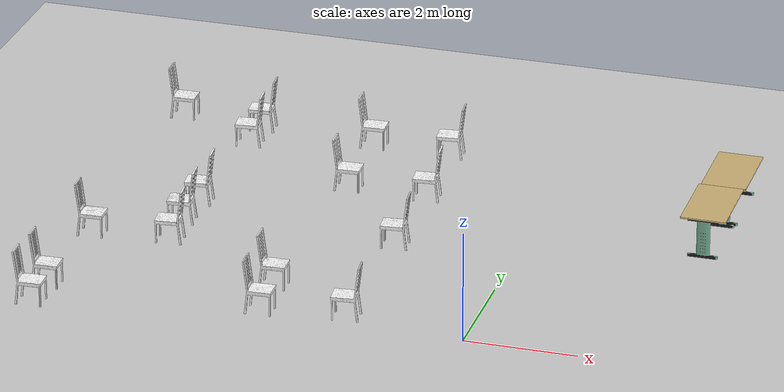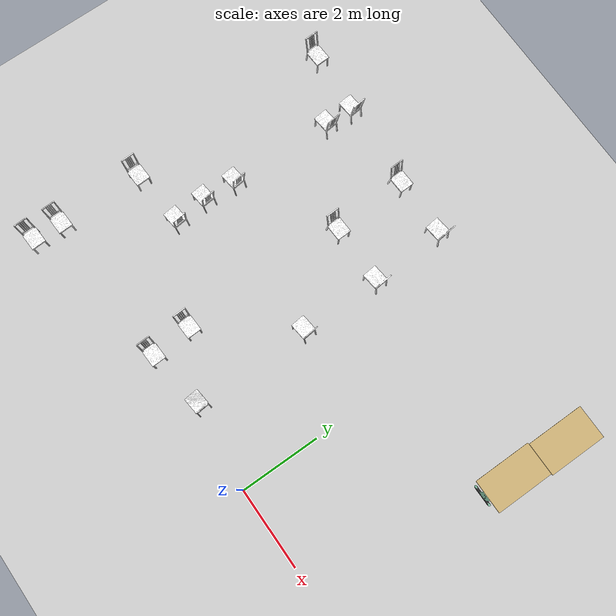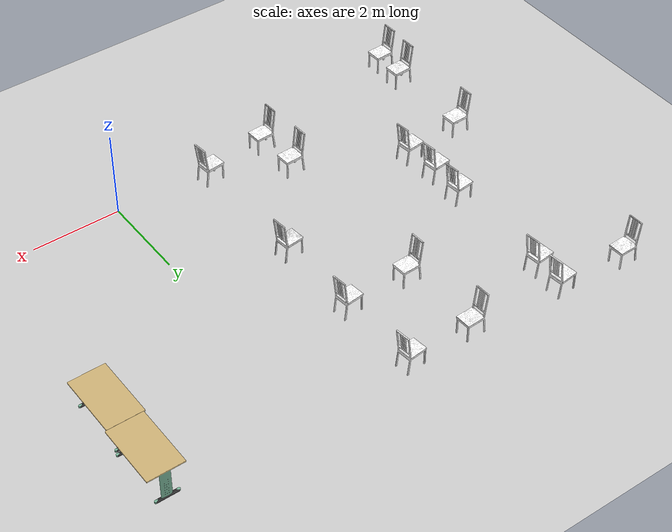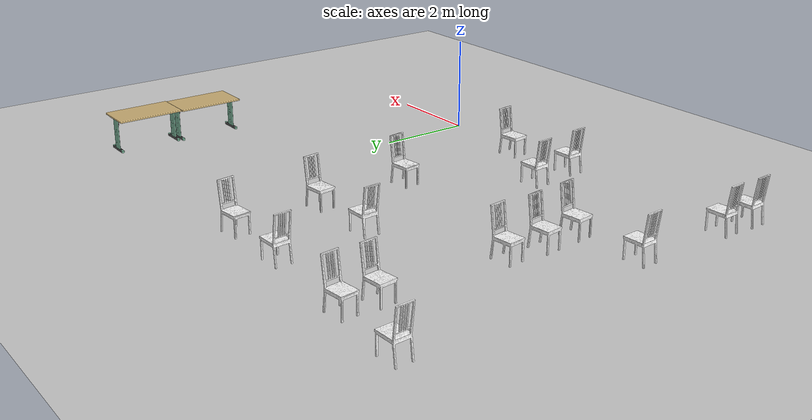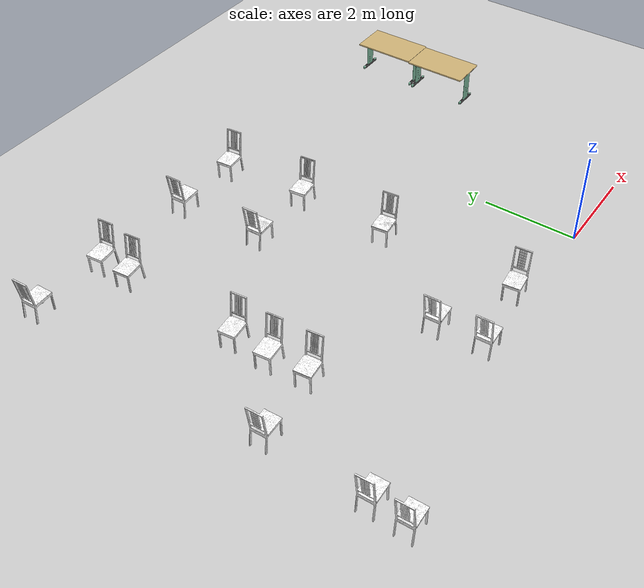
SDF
<sdf version="1.6">
 <world name="default">
  <model name="ground_plane">
   <static>1</static>
   <link name="link">
    <collision name="collision">
     <geometry><plane><normal>0 0 1</normal><size>100 100</size></plane></geometry>
     <surface>
      <contact><collide_bitmask>65535</collide_bitmask></contact>
      <friction><ode><mu>100</mu><mu2>50</mu2></ode></friction>
     </surface>
    </collision>
    <visual name="visual">
     <cast_shadows>0</cast_shadows>
     <geometry><plane><normal>0 0 1</normal><size>100 100</size></plane></geometry>
     <material>
      <script><uri>file://media/materials/scripts/gazebo.material</uri><name>Gazebo/Grey</name></script>
     </material>
    </visual>
   </link>
  </model>
  <model name="chair_ikea_borje">
   <link name="base_link">
    <inertial>
     <mass>1</mass>
     <inertia><ixx>1</ixx><ixy>0</ixy><ixz>0</ixz><iyy>1</iyy><iyz>0</iyz><izz>1</izz></inertia>
    </inertial>
    <visual name="base_link_visual">
     <geometry><mesh><scale>1 1 1</scale><uri>model://chair_ikea_borje/meshes/model.dae</uri></mesh></geometry>
    </visual>
    <collision name="base_link_collision">
     <geometry><mesh><uri>model://chair_ikea_borje/meshes/model.dae</uri></mesh></geometry>
     <surface>
      <friction>
       <ode><mu>1</mu><mu2>1</mu2><fdir1>0 0 0</fdir1><slip1>0</slip1><slip2>0</slip2></ode>
       <torsional>
        <coefficient>1</coefficient>
        <patch_radius>0</patch_radius>
        <surface_radius>0</surface_radius>
        <use_patch_radius>1</use_patch_radius>
        <ode><slip>0</slip></ode>
       </torsional>
      </friction>
      <bounce><restitution_coefficient>0</restitution_coefficient><threshold>1e+06</threshold></bounce>
      <contact>
       <collide_without_contact>0</collide_without_contact>
       <collide_without_contact_bitmask>1</collide_without_contact_bitmask>
       <collide_bitmask>1</collide_bitmask>
       <ode>
        <soft_cfm>0</soft_cfm>
        <soft_erp>0.2</soft_erp>
        <kp>1e+13</kp>
        <kd>1</kd>
        <max_vel>0.01</max_vel>
        <min_depth>0</min_depth>
       </ode>
       <bullet>
        <split_impulse>1</split_impulse>
        <split_impulse_penetration_threshold>-0.01</split_impulse_penetration_threshold>
        <soft_cfm>0</soft_cfm>
        <soft_erp>0.2</soft_erp>
        <kp>1e+13</kp>
        <kd>1</kd>
       </bullet>
      </contact>
     </surface>
    </collision>
   </link>
   <static>1</static>
   <pose>-2.20577 7.04316 0 0 0 -1.46428</pose>
  </model>
  <model name="chair_ikea_borje_0">
   <link name="base_link">
    <inertial>
     <mass>1</mass>
     <inertia><ixx>1</ixx><ixy>0</ixy><ixz>0</ixz><iyy>1</iyy><iyz>0</iyz><izz>1</izz></inertia>
    </inertial>
    <visual name="base_link_visual">
     <geometry><mesh><scale>1 1 1</scale><uri>model://chair_ikea_borje/meshes/model.dae</uri></mesh></geometry>
    </visual>
    <collision name="base_link_collision">
     <geometry><mesh><uri>model://chair_ikea_borje/meshes/model.dae</uri></mesh></geometry>
     <surface>
      <friction>
       <ode><mu>1</mu><mu2>1</mu2><fdir1>0 0 0</fdir1><slip1>0</slip1><slip2>0</slip2></ode>
       <torsional>
        <coefficient>1</coefficient>
        <patch_radius>0</patch_radius>
        <surface_radius>0</surface_radius>
        <use_patch_radius>1</use_patch_radius>
        <ode><slip>0</slip></ode>
       </torsional>
      </friction>
      <bounce><restitution_coefficient>0</restitution_coefficient><threshold>1e+06</threshold></bounce>
      <contact>
       <collide_without_contact>0</collide_without_contact>
       <collide_without_contact_bitmask>1</collide_without_contact_bitmask>
       <collide_bitmask>1</collide_bitmask>
       <ode>
        <soft_cfm>0</soft_cfm>
        <soft_erp>0.2</soft_erp>
        <kp>1e+13</kp>
        <kd>1</kd>
        <max_vel>0.01</max_vel>
        <min_depth>0</min_depth>
       </ode>
       <bullet>
        <split_impulse>1</split_impulse>
        <split_impulse_penetration_threshold>-0.01</split_impulse_penetration_threshold>
        <soft_cfm>0</soft_cfm>
        <soft_erp>0.2</soft_erp>
        <kp>1e+13</kp>
        <kd>1</kd>
       </bullet>
      </contact>
     </surface>
    </collision>
   </link>
   <static>1</static>
   <pose>-3.76611 7.04133 0 0 -0 1.61155</pose>
  </model>
  <model name="chair_ikea_borje_clone">
   <link name="base_link">
    <inertial>
     <mass>1</mass>
     <inertia><ixx>1</ixx><ixy>0</ixy><ixz>0</ixz><iyy>1</iyy><iyz>0</iyz><izz>1</izz></inertia>
    </inertial>
    <visual name="base_link_visual">
     <geometry><mesh><scale>1 1 1</scale><uri>model://chair_ikea_borje/meshes/model.dae</uri></mesh></geometry>
    </visual>
    <collision name="base_link_collision">
     <geometry><mesh><uri>model://chair_ikea_borje/meshes/model.dae</uri></mesh></geometry>
     <surface>
      <friction>
       <ode><mu>1</mu><mu2>1</mu2><fdir1>0 0 0</fdir1><slip1>0</slip1><slip2>0</slip2></ode>
       <torsional>
        <coefficient>1</coefficient>
        <patch_radius>0</patch_radius>
        <surface_radius>0</surface_radius>
        <use_patch_radius>1</use_patch_radius>
        <ode><slip>0</slip></ode>
       </torsional>
      </friction>
      <bounce><restitution_coefficient>0</restitution_coefficient><threshold>1e+06</threshold></bounce>
      <contact>
       <collide_without_contact>0</collide_without_contact>
       <collide_without_contact_bitmask>1</collide_without_contact_bitmask>
       <collide_bitmask>1</collide_bitmask>
       <ode>
        <soft_cfm>0</soft_cfm>
        <soft_erp>0.2</soft_erp>
        <kp>1e+13</kp>
        <kd>1</kd>
        <max_vel>0.01</max_vel>
        <min_depth>0</min_depth>
       </ode>
       <bullet>
        <split_impulse>1</split_impulse>
        <split_impulse_penetration_threshold>-0.01</split_impulse_penetration_threshold>
        <soft_cfm>0</soft_cfm>
        <soft_erp>0.2</soft_erp>
        <kp>1e+13</kp>
        <kd>1</kd>
       </bullet>
      </contact>
     </surface>
    </collision>
   </link>
   <static>1</static>
   <pose>-2.10978 5.18257 0 0 0 -1.46428</pose>
  </model>
  <model name="chair_ikea_borje_clone_0">
   <link name="base_link">
    <inertial>
     <mass>1</mass>
     <inertia><ixx>1</ixx><ixy>0</ixy><ixz>0</ixz><iyy>1</iyy><iyz>0</iyz><izz>1</izz></inertia>
    </inertial>
    <visual name="base_link_visual">
     <geometry><mesh><scale>1 1 1</scale><uri>model://chair_ikea_borje/meshes/model.dae</uri></mesh></geometry>
    </visual>
    <collision name="base_link_collision">
     <geometry><mesh><uri>model://chair_ikea_borje/meshes/model.dae</uri></mesh></geometry>
     <surface>
      <friction>
       <ode><mu>1</mu><mu2>1</mu2><fdir1>0 0 0</fdir1><slip1>0</slip1><slip2>0</slip2></ode>
       <torsional>
        <coefficient>1</coefficient>
        <patch_radius>0</patch_radius>
        <surface_radius>0</surface_radius>
        <use_patch_radius>1</use_patch_radius>
        <ode><slip>0</slip></ode>
       </torsional>
      </friction>
      <bounce><restitution_coefficient>0</restitution_coefficient><threshold>1e+06</threshold></bounce>
      <contact>
       <collide_without_contact>0</collide_without_contact>
       <collide_without_contact_bitmask>1</collide_without_contact_bitmask>
       <collide_bitmask>1</collide_bitmask>
       <ode>
        <soft_cfm>0</soft_cfm>
        <soft_erp>0.2</soft_erp>
        <kp>1e+13</kp>
        <kd>1</kd>
        <max_vel>0.01</max_vel>
        <min_depth>0</min_depth>
       </ode>
       <bullet>
        <split_impulse>1</split_impulse>
        <split_impulse_penetration_threshold>-0.01</split_impulse_penetration_threshold>
        <soft_cfm>0</soft_cfm>
        <soft_erp>0.2</soft_erp>
        <kp>1e+13</kp>
        <kd>1</kd>
       </bullet>
      </contact>
     </surface>
    </collision>
   </link>
   <static>1</static>
   <pose>-2.0955 0.278867 0 0 0 -1.46428</pose>
  </model>
  <model name="chair_ikea_borje_clone_1">
   <link name="base_link">
    <inertial>
     <mass>1</mass>
     <inertia><ixx>1</ixx><ixy>0</ixy><ixz>0</ixz><iyy>1</iyy><iyz>0</iyz><izz>1</izz></inertia>
    </inertial>
    <visual name="base_link_visual">
     <geometry><mesh><scale>1 1 1</scale><uri>model://chair_ikea_borje/meshes/model.dae</uri></mesh></geometry>
    </visual>
    <collision name="base_link_collision">
     <geometry><mesh><uri>model://chair_ikea_borje/meshes/model.dae</uri></mesh></geometry>
     <surface>
      <friction>
       <ode><mu>1</mu><mu2>1</mu2><fdir1>0 0 0</fdir1><slip1>0</slip1><slip2>0</slip2></ode>
       <torsional>
        <coefficient>1</coefficient>
        <patch_radius>0</patch_radius>
        <surface_radius>0</surface_radius>
        <use_patch_radius>1</use_patch_radius>
        <ode><slip>0</slip></ode>
       </torsional>
      </friction>
      <bounce><restitution_coefficient>0</restitution_coefficient><threshold>1e+06</threshold></bounce>
      <contact>
       <collide_without_contact>0</collide_without_contact>
       <collide_without_contact_bitmask>1</collide_without_contact_bitmask>
       <collide_bitmask>1</collide_bitmask>
       <ode>
        <soft_cfm>0</soft_cfm>
        <soft_erp>0.2</soft_erp>
        <kp>1e+13</kp>
        <kd>1</kd>
        <max_vel>0.01</max_vel>
        <min_depth>0</min_depth>
       </ode>
       <bullet>
        <split_impulse>1</split_impulse>
        <split_impulse_penetration_threshold>-0.01</split_impulse_penetration_threshold>
        <soft_cfm>0</soft_cfm>
        <soft_erp>0.2</soft_erp>
        <kp>1e+13</kp>
        <kd>1</kd>
       </bullet>
      </contact>
     </surface>
    </collision>
   </link>
   <static>1</static>
   <pose>-5.97586 3.87787 0 0 0 -1.46428</pose>
  </model>
  <model name="chair_ikea_borje_clone_2">
   <link name="base_link">
    <inertial>
     <mass>1</mass>
     <inertia><ixx>1</ixx><ixy>0</ixy><ixz>0</ixz><iyy>1</iyy><iyz>0</iyz><izz>1</izz></inertia>
    </inertial>
    <visual name="base_link_visual">
     <geometry><mesh><scale>1 1 1</scale><uri>model://chair_ikea_borje/meshes/model.dae</uri></mesh></geometry>
    </visual>
    <collision name="base_link_collision">
     <geometry><mesh><uri>model://chair_ikea_borje/meshes/model.dae</uri></mesh></geometry>
     <surface>
      <friction>
       <ode><mu>1</mu><mu2>1</mu2><fdir1>0 0 0</fdir1><slip1>0</slip1><slip2>0</slip2></ode>
       <torsional>
        <coefficient>1</coefficient>
        <patch_radius>0</patch_radius>
        <surface_radius>0</surface_radius>
        <use_patch_radius>1</use_patch_radius>
        <ode><slip>0</slip></ode>
       </torsional>
      </friction>
      <bounce><restitution_coefficient>0</restitution_coefficient><threshold>1e+06</threshold></bounce>
      <contact>
       <collide_without_contact>0</collide_without_contact>
       <collide_without_contact_bitmask>1</collide_without_contact_bitmask>
       <collide_bitmask>1</collide_bitmask>
       <ode>
        <soft_cfm>0</soft_cfm>
        <soft_erp>0.2</soft_erp>
        <kp>1e+13</kp>
        <kd>1</kd>
        <max_vel>0.01</max_vel>
        <min_depth>0</min_depth>
       </ode>
       <bullet>
        <split_impulse>1</split_impulse>
        <split_impulse_penetration_threshold>-0.01</split_impulse_penetration_threshold>
        <soft_cfm>0</soft_cfm>
        <soft_erp>0.2</soft_erp>
        <kp>1e+13</kp>
        <kd>1</kd>
       </bullet>
      </contact>
     </surface>
    </collision>
   </link>
   <static>1</static>
   <pose>-6.01787 3.05475 0 0 0 -1.46428</pose>
  </model>
  <model name="chair_ikea_borje_clone_3">
   <link name="base_link">
    <inertial>
     <mass>1</mass>
     <inertia><ixx>1</ixx><ixy>0</ixy><ixz>0</ixz><iyy>1</iyy><iyz>0</iyz><izz>1</izz></inertia>
    </inertial>
    <visual name="base_link_visual">
     <geometry><mesh><scale>1 1 1</scale><uri>model://chair_ikea_borje/meshes/model.dae</uri></mesh></geometry>
    </visual>
    <collision name="base_link_collision">
     <geometry><mesh><uri>model://chair_ikea_borje/meshes/model.dae</uri></mesh></geometry>
     <surface>
      <friction>
       <ode><mu>1</mu><mu2>1</mu2><fdir1>0 0 0</fdir1><slip1>0</slip1><slip2>0</slip2></ode>
       <torsional>
        <coefficient>1</coefficient>
        <patch_radius>0</patch_radius>
        <surface_radius>0</surface_radius>
        <use_patch_radius>1</use_patch_radius>
        <ode><slip>0</slip></ode>
       </torsional>
      </friction>
      <bounce><restitution_coefficient>0</restitution_coefficient><threshold>1e+06</threshold></bounce>
      <contact>
       <collide_without_contact>0</collide_without_contact>
       <collide_without_contact_bitmask>1</collide_without_contact_bitmask>
       <collide_bitmask>1</collide_bitmask>
       <ode>
        <soft_cfm>0</soft_cfm>
        <soft_erp>0.2</soft_erp>
        <kp>1e+13</kp>
        <kd>1</kd>
        <max_vel>0.01</max_vel>
        <min_depth>0</min_depth>
       </ode>
       <bullet>
        <split_impulse>1</split_impulse>
        <split_impulse_penetration_threshold>-0.01</split_impulse_penetration_threshold>
        <soft_cfm>0</soft_cfm>
        <soft_erp>0.2</soft_erp>
        <kp>1e+13</kp>
        <kd>1</kd>
       </bullet>
      </contact>
     </surface>
    </collision>
   </link>
   <static>1</static>
   <pose>-5.95816 2.23836 0 0 0 -1.46428</pose>
  </model>
  <model name="chair_ikea_borje_clone_4">
   <link name="base_link">
    <inertial>
     <mass>1</mass>
     <inertia><ixx>1</ixx><ixy>0</ixy><ixz>0</ixz><iyy>1</iyy><iyz>0</iyz><izz>1</izz></inertia>
    </inertial>
    <visual name="base_link_visual">
     <geometry><mesh><scale>1 1 1</scale><uri>model://chair_ikea_borje/meshes/model.dae</uri></mesh></geometry>
    </visual>
    <collision name="base_link_collision">
     <geometry><mesh><uri>model://chair_ikea_borje/meshes/model.dae</uri></mesh></geometry>
     <surface>
      <friction>
       <ode><mu>1</mu><mu2>1</mu2><fdir1>0 0 0</fdir1><slip1>0</slip1><slip2>0</slip2></ode>
       <torsional>
        <coefficient>1</coefficient>
        <patch_radius>0</patch_radius>
        <surface_radius>0</surface_radius>
        <use_patch_radius>1</use_patch_radius>
        <ode><slip>0</slip></ode>
       </torsional>
      </friction>
      <bounce><restitution_coefficient>0</restitution_coefficient><threshold>1e+06</threshold></bounce>
      <contact>
       <collide_without_contact>0</collide_without_contact>
       <collide_without_contact_bitmask>1</collide_without_contact_bitmask>
       <collide_bitmask>1</collide_bitmask>
       <ode>
        <soft_cfm>0</soft_cfm>
        <soft_erp>0.2</soft_erp>
        <kp>1e+13</kp>
        <kd>1</kd>
        <max_vel>0.01</max_vel>
        <min_depth>0</min_depth>
       </ode>
       <bullet>
        <split_impulse>1</split_impulse>
        <split_impulse_penetration_threshold>-0.01</split_impulse_penetration_threshold>
        <soft_cfm>0</soft_cfm>
        <soft_erp>0.2</soft_erp>
        <kp>1e+13</kp>
        <kd>1</kd>
       </bullet>
      </contact>
     </surface>
    </collision>
   </link>
   <static>1</static>
   <pose>-5.8776 7.199 0 0 0 -1.46428</pose>
  </model>
  <model name="chair_ikea_borje_clone_5">
   <link name="base_link">
    <inertial>
     <mass>1</mass>
     <inertia><ixx>1</ixx><ixy>0</ixy><ixz>0</ixz><iyy>1</iyy><iyz>0</iyz><izz>1</izz></inertia>
    </inertial>
    <visual name="base_link_visual">
     <geometry><mesh><scale>1 1 1</scale><uri>model://chair_ikea_borje/meshes/model.dae</uri></mesh></geometry>
    </visual>
    <collision name="base_link_collision">
     <geometry><mesh><uri>model://chair_ikea_borje/meshes/model.dae</uri></mesh></geometry>
     <surface>
      <friction>
       <ode><mu>1</mu><mu2>1</mu2><fdir1>0 0 0</fdir1><slip1>0</slip1><slip2>0</slip2></ode>
       <torsional>
        <coefficient>1</coefficient>
        <patch_radius>0</patch_radius>
        <surface_radius>0</surface_radius>
        <use_patch_radius>1</use_patch_radius>
        <ode><slip>0</slip></ode>
       </torsional>
      </friction>
      <bounce><restitution_coefficient>0</restitution_coefficient><threshold>1e+06</threshold></bounce>
      <contact>
       <collide_without_contact>0</collide_without_contact>
       <collide_without_contact_bitmask>1</collide_without_contact_bitmask>
       <collide_bitmask>1</collide_bitmask>
       <ode>
        <soft_cfm>0</soft_cfm>
        <soft_erp>0.2</soft_erp>
        <kp>1e+13</kp>
        <kd>1</kd>
        <max_vel>0.01</max_vel>
        <min_depth>0</min_depth>
       </ode>
       <bullet>
        <split_impulse>1</split_impulse>
        <split_impulse_penetration_threshold>-0.01</split_impulse_penetration_threshold>
        <soft_cfm>0</soft_cfm>
        <soft_erp>0.2</soft_erp>
        <kp>1e+13</kp>
        <kd>1</kd>
       </bullet>
      </contact>
     </surface>
    </collision>
   </link>
   <static>1</static>
   <pose>-5.89994 6.49163 0 0 0 -1.46428</pose>
  </model>
  <model name="chair_ikea_borje_clone_13">
   <link name="base_link">
    <inertial>
     <mass>1</mass>
     <inertia><ixx>1</ixx><ixy>0</ixy><ixz>0</ixz><iyy>1</iyy><iyz>0</iyz><izz>1</izz></inertia>
    </inertial>
    <visual name="base_link_visual">
     <geometry><mesh><scale>1 1 1</scale><uri>model://chair_ikea_borje/meshes/model.dae</uri></mesh></geometry>
    </visual>
    <collision name="base_link_collision">
     <geometry><mesh><uri>model://chair_ikea_borje/meshes/model.dae</uri></mesh></geometry>
     <surface>
      <friction>
       <ode><mu>1</mu><mu2>1</mu2><fdir1>0 0 0</fdir1><slip1>0</slip1><slip2>0</slip2></ode>
       <torsional>
        <coefficient>1</coefficient>
        <patch_radius>0</patch_radius>
        <surface_radius>0</surface_radius>
        <use_patch_radius>1</use_patch_radius>
        <ode><slip>0</slip></ode>
       </torsional>
      </friction>
      <bounce><restitution_coefficient>0</restitution_coefficient><threshold>1e+06</threshold></bounce>
      <contact>
       <collide_without_contact>0</collide_without_contact>
       <collide_without_contact_bitmask>1</collide_without_contact_bitmask>
       <collide_bitmask>1</collide_bitmask>
       <ode>
        <soft_cfm>0</soft_cfm>
        <soft_erp>0.2</soft_erp>
        <kp>1e+13</kp>
        <kd>1</kd>
        <max_vel>0.01</max_vel>
        <min_depth>0</min_depth>
       </ode>
       <bullet>
        <split_impulse>1</split_impulse>
        <split_impulse_penetration_threshold>-0.01</split_impulse_penetration_threshold>
        <soft_cfm>0</soft_cfm>
        <soft_erp>0.2</soft_erp>
        <kp>1e+13</kp>
        <kd>1</kd>
       </bullet>
      </contact>
     </surface>
    </collision>
   </link>
   <static>1</static>
   <pose>-2.10219 3.17288 0 0 0 -1.46428</pose>
  </model>
  <model name="chair_ikea_borje_0_clone">
   <link name="base_link">
    <inertial>
     <mass>1</mass>
     <inertia><ixx>1</ixx><ixy>0</ixy><ixz>0</ixz><iyy>1</iyy><iyz>0</iyz><izz>1</izz></inertia>
    </inertial>
    <visual name="base_link_visual">
     <geometry><mesh><scale>1 1 1</scale><uri>model://chair_ikea_borje/meshes/model.dae</uri></mesh></geometry>
    </visual>
    <collision name="base_link_collision">
     <geometry><mesh><uri>model://chair_ikea_borje/meshes/model.dae</uri></mesh></geometry>
     <surface>
      <friction>
       <ode><mu>1</mu><mu2>1</mu2><fdir1>0 0 0</fdir1><slip1>0</slip1><slip2>0</slip2></ode>
       <torsional>
        <coefficient>1</coefficient>
        <patch_radius>0</patch_radius>
        <surface_radius>0</surface_radius>
        <use_patch_radius>1</use_patch_radius>
        <ode><slip>0</slip></ode>
       </torsional>
      </friction>
      <bounce><restitution_coefficient>0</restitution_coefficient><threshold>1e+06</threshold></bounce>
      <contact>
       <collide_without_contact>0</collide_without_contact>
       <collide_without_contact_bitmask>1</collide_without_contact_bitmask>
       <collide_bitmask>1</collide_bitmask>
       <ode>
        <soft_cfm>0</soft_cfm>
        <soft_erp>0.2</soft_erp>
        <kp>1e+13</kp>
        <kd>1</kd>
        <max_vel>0.01</max_vel>
        <min_depth>0</min_depth>
       </ode>
       <bullet>
        <split_impulse>1</split_impulse>
        <split_impulse_penetration_threshold>-0.01</split_impulse_penetration_threshold>
        <soft_cfm>0</soft_cfm>
        <soft_erp>0.2</soft_erp>
        <kp>1e+13</kp>
        <kd>1</kd>
       </bullet>
      </contact>
     </surface>
    </collision>
   </link>
   <static>1</static>
   <pose>-3.66941 5.16503 0 0 -0 1.61155</pose>
  </model>
  <model name="chair_ikea_borje_0_clone_0">
   <link name="base_link">
    <inertial>
     <mass>1</mass>
     <inertia><ixx>1</ixx><ixy>0</ixy><ixz>0</ixz><iyy>1</iyy><iyz>0</iyz><izz>1</izz></inertia>
    </inertial>
    <visual name="base_link_visual">
     <geometry><mesh><scale>1 1 1</scale><uri>model://chair_ikea_borje/meshes/model.dae</uri></mesh></geometry>
    </visual>
    <collision name="base_link_collision">
     <geometry><mesh><uri>model://chair_ikea_borje/meshes/model.dae</uri></mesh></geometry>
     <surface>
      <friction>
       <ode><mu>1</mu><mu2>1</mu2><fdir1>0 0 0</fdir1><slip1>0</slip1><slip2>0</slip2></ode>
       <torsional>
        <coefficient>1</coefficient>
        <patch_radius>0</patch_radius>
        <surface_radius>0</surface_radius>
        <use_patch_radius>1</use_patch_radius>
        <ode><slip>0</slip></ode>
       </torsional>
      </friction>
      <bounce><restitution_coefficient>0</restitution_coefficient><threshold>1e+06</threshold></bounce>
      <contact>
       <collide_without_contact>0</collide_without_contact>
       <collide_without_contact_bitmask>1</collide_without_contact_bitmask>
       <collide_bitmask>1</collide_bitmask>
       <ode>
        <soft_cfm>0</soft_cfm>
        <soft_erp>0.2</soft_erp>
        <kp>1e+13</kp>
        <kd>1</kd>
        <max_vel>0.01</max_vel>
        <min_depth>0</min_depth>
       </ode>
       <bullet>
        <split_impulse>1</split_impulse>
        <split_impulse_penetration_threshold>-0.01</split_impulse_penetration_threshold>
        <soft_cfm>0</soft_cfm>
        <soft_erp>0.2</soft_erp>
        <kp>1e+13</kp>
        <kd>1</kd>
       </bullet>
      </contact>
     </surface>
    </collision>
   </link>
   <static>1</static>
   <pose>-3.73452 1.05544 0 0 -0 1.61155</pose>
  </model>
  <model name="chair_ikea_borje_0_clone_1">
   <link name="base_link">
    <inertial>
     <mass>1</mass>
     <inertia><ixx>1</ixx><ixy>0</ixy><ixz>0</ixz><iyy>1</iyy><iyz>0</iyz><izz>1</izz></inertia>
    </inertial>
    <visual name="base_link_visual">
     <geometry><mesh><scale>1 1 1</scale><uri>model://chair_ikea_borje/meshes/model.dae</uri></mesh></geometry>
    </visual>
    <collision name="base_link_collision">
     <geometry><mesh><uri>model://chair_ikea_borje/meshes/model.dae</uri></mesh></geometry>
     <surface>
      <friction>
       <ode><mu>1</mu><mu2>1</mu2><fdir1>0 0 0</fdir1><slip1>0</slip1><slip2>0</slip2></ode>
       <torsional>
        <coefficient>1</coefficient>
        <patch_radius>0</patch_radius>
        <surface_radius>0</surface_radius>
        <use_patch_radius>1</use_patch_radius>
        <ode><slip>0</slip></ode>
       </torsional>
      </friction>
      <bounce><restitution_coefficient>0</restitution_coefficient><threshold>1e+06</threshold></bounce>
      <contact>
       <collide_without_contact>0</collide_without_contact>
       <collide_without_contact_bitmask>1</collide_without_contact_bitmask>
       <collide_bitmask>1</collide_bitmask>
       <ode>
        <soft_cfm>0</soft_cfm>
        <soft_erp>0.2</soft_erp>
        <kp>1e+13</kp>
        <kd>1</kd>
        <max_vel>0.01</max_vel>
        <min_depth>0</min_depth>
       </ode>
       <bullet>
        <split_impulse>1</split_impulse>
        <split_impulse_penetration_threshold>-0.01</split_impulse_penetration_threshold>
        <soft_cfm>0</soft_cfm>
        <soft_erp>0.2</soft_erp>
        <kp>1e+13</kp>
        <kd>1</kd>
       </bullet>
      </contact>
     </surface>
    </collision>
   </link>
   <static>1</static>
   <pose>-3.65807 0.058601 0 0 -0 1.61155</pose>
  </model>
  <model name="chair_ikea_borje_0_clone_4">
   <link name="base_link">
    <inertial>
     <mass>1</mass>
     <inertia><ixx>1</ixx><ixy>0</ixy><ixz>0</ixz><iyy>1</iyy><iyz>0</iyz><izz>1</izz></inertia>
    </inertial>
    <visual name="base_link_visual">
     <geometry><mesh><scale>1 1 1</scale><uri>model://chair_ikea_borje/meshes/model.dae</uri></mesh></geometry>
    </visual>
    <collision name="base_link_collision">
     <geometry><mesh><uri>model://chair_ikea_borje/meshes/model.dae</uri></mesh></geometry>
     <surface>
      <friction>
       <ode><mu>1</mu><mu2>1</mu2><fdir1>0 0 0</fdir1><slip1>0</slip1><slip2>0</slip2></ode>
       <torsional>
        <coefficient>1</coefficient>
        <patch_radius>0</patch_radius>
        <surface_radius>0</surface_radius>
        <use_patch_radius>1</use_patch_radius>
        <ode><slip>0</slip></ode>
       </torsional>
      </friction>
      <bounce><restitution_coefficient>0</restitution_coefficient><threshold>1e+06</threshold></bounce>
      <contact>
       <collide_without_contact>0</collide_without_contact>
       <collide_without_contact_bitmask>1</collide_without_contact_bitmask>
       <collide_bitmask>1</collide_bitmask>
       <ode>
        <soft_cfm>0</soft_cfm>
        <soft_erp>0.2</soft_erp>
        <kp>1e+13</kp>
        <kd>1</kd>
        <max_vel>0.01</max_vel>
        <min_depth>0</min_depth>
       </ode>
       <bullet>
        <split_impulse>1</split_impulse>
        <split_impulse_penetration_threshold>-0.01</split_impulse_penetration_threshold>
        <soft_cfm>0</soft_cfm>
        <soft_erp>0.2</soft_erp>
        <kp>1e+13</kp>
        <kd>1</kd>
       </bullet>
      </contact>
     </surface>
    </collision>
   </link>
   <static>1</static>
   <pose>-7.4476 2.08263 0 0 -0 1.61155</pose>
  </model>
  <model name="chair_ikea_borje_0_clone_5">
   <link name="base_link">
    <inertial>
     <mass>1</mass>
     <inertia><ixx>1</ixx><ixy>0</ixy><ixz>0</ixz><iyy>1</iyy><iyz>0</iyz><izz>1</izz></inertia>
    </inertial>
    <visual name="base_link_visual">
     <geometry><mesh><scale>1 1 1</scale><uri>model://chair_ikea_borje/meshes/model.dae</uri></mesh></geometry>
    </visual>
    <collision name="base_link_collision">
     <geometry><mesh><uri>model://chair_ikea_borje/meshes/model.dae</uri></mesh></geometry>
     <surface>
      <friction>
       <ode><mu>1</mu><mu2>1</mu2><fdir1>0 0 0</fdir1><slip1>0</slip1><slip2>0</slip2></ode>
       <torsional>
        <coefficient>1</coefficient>
        <patch_radius>0</patch_radius>
        <surface_radius>0</surface_radius>
        <use_patch_radius>1</use_patch_radius>
        <ode><slip>0</slip></ode>
       </torsional>
      </friction>
      <bounce><restitution_coefficient>0</restitution_coefficient><threshold>1e+06</threshold></bounce>
      <contact>
       <collide_without_contact>0</collide_without_contact>
       <collide_without_contact_bitmask>1</collide_without_contact_bitmask>
       <collide_bitmask>1</collide_bitmask>
       <ode>
        <soft_cfm>0</soft_cfm>
        <soft_erp>0.2</soft_erp>
        <kp>1e+13</kp>
        <kd>1</kd>
        <max_vel>0.01</max_vel>
        <min_depth>0</min_depth>
       </ode>
       <bullet>
        <split_impulse>1</split_impulse>
        <split_impulse_penetration_threshold>-0.01</split_impulse_penetration_threshold>
        <soft_cfm>0</soft_cfm>
        <soft_erp>0.2</soft_erp>
        <kp>1e+13</kp>
        <kd>1</kd>
       </bullet>
      </contact>
     </surface>
    </collision>
   </link>
   <static>1</static>
   <pose>-7.49969 -0.017299 0 0 -0 1.61155</pose>
  </model>
  <model name="chair_ikea_borje_0_clone_6">
   <link name="base_link">
    <inertial>
     <mass>1</mass>
     <inertia><ixx>1</ixx><ixy>0</ixy><ixz>0</ixz><iyy>1</iyy><iyz>0</iyz><izz>1</izz></inertia>
    </inertial>
    <visual name="base_link_visual">
     <geometry><mesh><scale>1 1 1</scale><uri>model://chair_ikea_borje/meshes/model.dae</uri></mesh></geometry>
    </visual>
    <collision name="base_link_collision">
     <geometry><mesh><uri>model://chair_ikea_borje/meshes/model.dae</uri></mesh></geometry>
     <surface>
      <friction>
       <ode><mu>1</mu><mu2>1</mu2><fdir1>0 0 0</fdir1><slip1>0</slip1><slip2>0</slip2></ode>
       <torsional>
        <coefficient>1</coefficient>
        <patch_radius>0</patch_radius>
        <surface_radius>0</surface_radius>
        <use_patch_radius>1</use_patch_radius>
        <ode><slip>0</slip></ode>
       </torsional>
      </friction>
      <bounce><restitution_coefficient>0</restitution_coefficient><threshold>1e+06</threshold></bounce>
      <contact>
       <collide_without_contact>0</collide_without_contact>
       <collide_without_contact_bitmask>1</collide_without_contact_bitmask>
       <collide_bitmask>1</collide_bitmask>
       <ode>
        <soft_cfm>0</soft_cfm>
        <soft_erp>0.2</soft_erp>
        <kp>1e+13</kp>
        <kd>1</kd>
        <max_vel>0.01</max_vel>
        <min_depth>0</min_depth>
       </ode>
       <bullet>
        <split_impulse>1</split_impulse>
        <split_impulse_penetration_threshold>-0.01</split_impulse_penetration_threshold>
        <soft_cfm>0</soft_cfm>
        <soft_erp>0.2</soft_erp>
        <kp>1e+13</kp>
        <kd>1</kd>
       </bullet>
      </contact>
     </surface>
    </collision>
   </link>
   <static>1</static>
   <pose>-7.52738 -0.729831 0 0 -0 1.61155</pose>
  </model>
  <model name="chair_ikea_borje_0_clone_14">
   <link name="base_link">
    <inertial>
     <mass>1</mass>
     <inertia><ixx>1</ixx><ixy>0</ixy><ixz>0</ixz><iyy>1</iyy><iyz>0</iyz><izz>1</izz></inertia>
    </inertial>
    <visual name="base_link_visual">
     <geometry><mesh><scale>1 1 1</scale><uri>model://chair_ikea_borje/meshes/model.dae</uri></mesh></geometry>
    </visual>
    <collision name="base_link_collision">
     <geometry><mesh><uri>model://chair_ikea_borje/meshes/model.dae</uri></mesh></geometry>
     <surface>
      <friction>
       <ode><mu>1</mu><mu2>1</mu2><fdir1>0 0 0</fdir1><slip1>0</slip1><slip2>0</slip2></ode>
       <torsional>
        <coefficient>1</coefficient>
        <patch_radius>0</patch_radius>
        <surface_radius>0</surface_radius>
        <use_patch_radius>1</use_patch_radius>
        <ode><slip>0</slip></ode>
       </torsional>
      </friction>
      <bounce><restitution_coefficient>0</restitution_coefficient><threshold>1e+06</threshold></bounce>
      <contact>
       <collide_without_contact>0</collide_without_contact>
       <collide_without_contact_bitmask>1</collide_without_contact_bitmask>
       <collide_bitmask>1</collide_bitmask>
       <ode>
        <soft_cfm>0</soft_cfm>
        <soft_erp>0.2</soft_erp>
        <kp>1e+13</kp>
        <kd>1</kd>
        <max_vel>0.01</max_vel>
        <min_depth>0</min_depth>
       </ode>
       <bullet>
        <split_impulse>1</split_impulse>
        <split_impulse_penetration_threshold>-0.01</split_impulse_penetration_threshold>
        <soft_cfm>0</soft_cfm>
        <soft_erp>0.2</soft_erp>
        <kp>1e+13</kp>
        <kd>1</kd>
       </bullet>
      </contact>
     </surface>
    </collision>
   </link>
   <static>1</static>
   <pose>-7.5336 7.3033 0 0 -0 1.61155</pose>
  </model>
  <model name="desk_shared">
   <link name="link">
    <collision name="collision">
     <geometry><mesh><uri>model://desk_shared/meshes/model.dae</uri></mesh></geometry>
    </collision>
    <visual name="visual">
     <geometry><mesh><uri>model://desk_shared/meshes/model.dae</uri></mesh></geometry>
    </visual>
   </link>
   <static>1</static>
   <pose>3.12975 4.9199 0 0 -0 0</pose>
  </model>
  <model name="desk_shared_clone">
   <link name="link">
    <collision name="collision">
     <geometry><mesh><uri>model://desk_shared/meshes/model.dae</uri></mesh></geometry>
    </collision>
    <visual name="visual">
     <geometry><mesh><uri>model://desk_shared/meshes/model.dae</uri></mesh></geometry>
    </visual>
   </link>
   <static>1</static>
   <pose>3.16683 6.33605 0 0 -0 0</pose>
  </model>
 </world>
</sdf>
